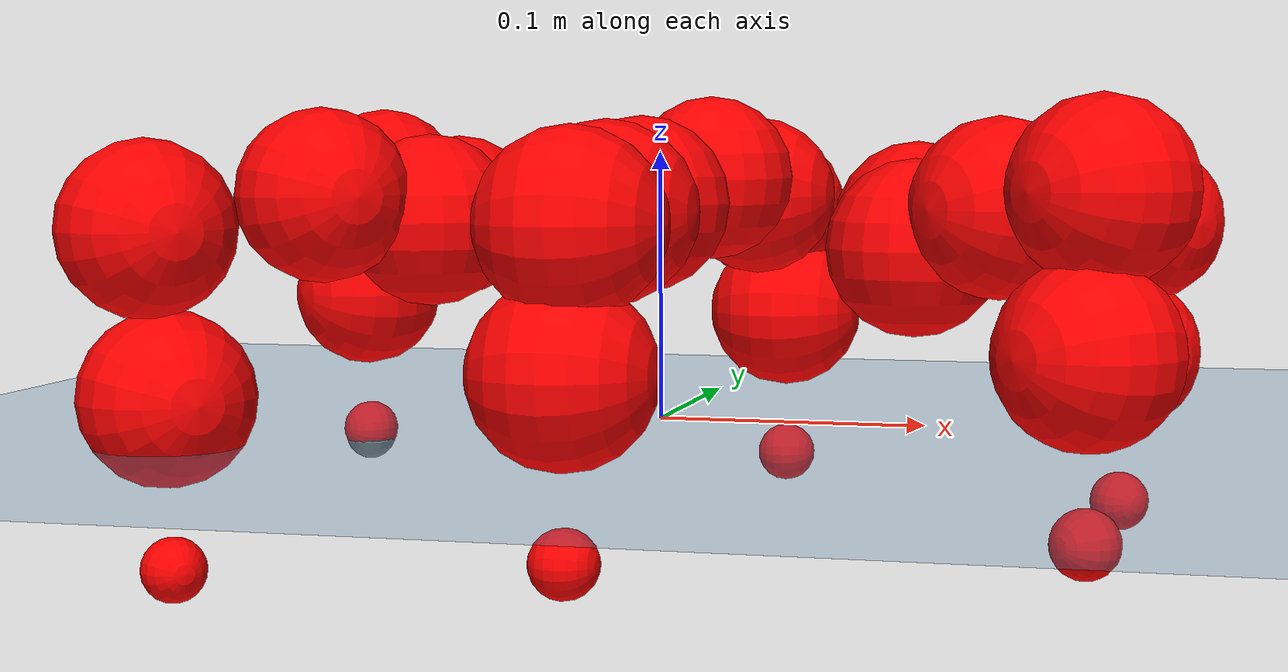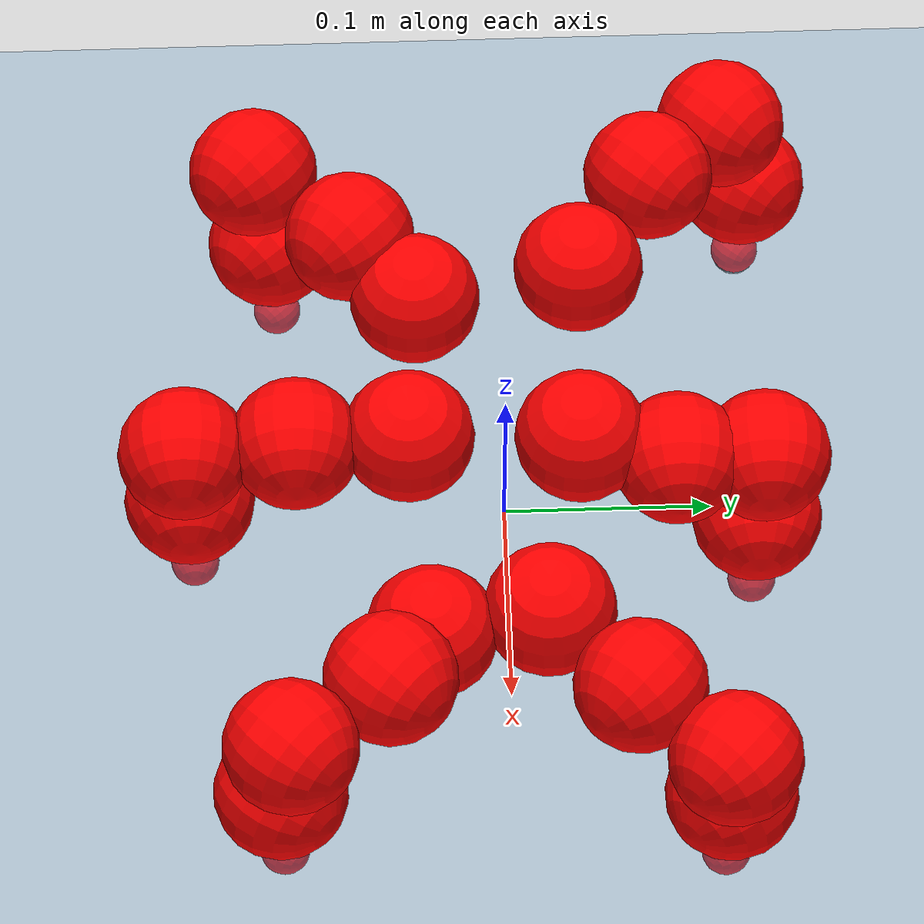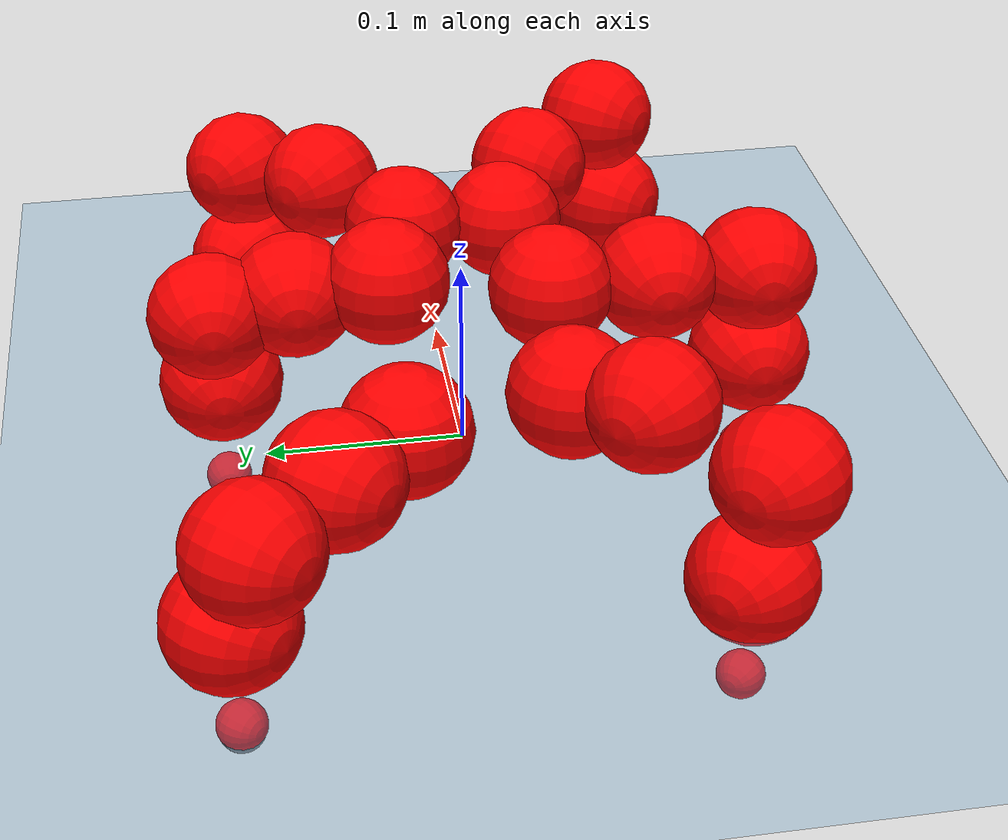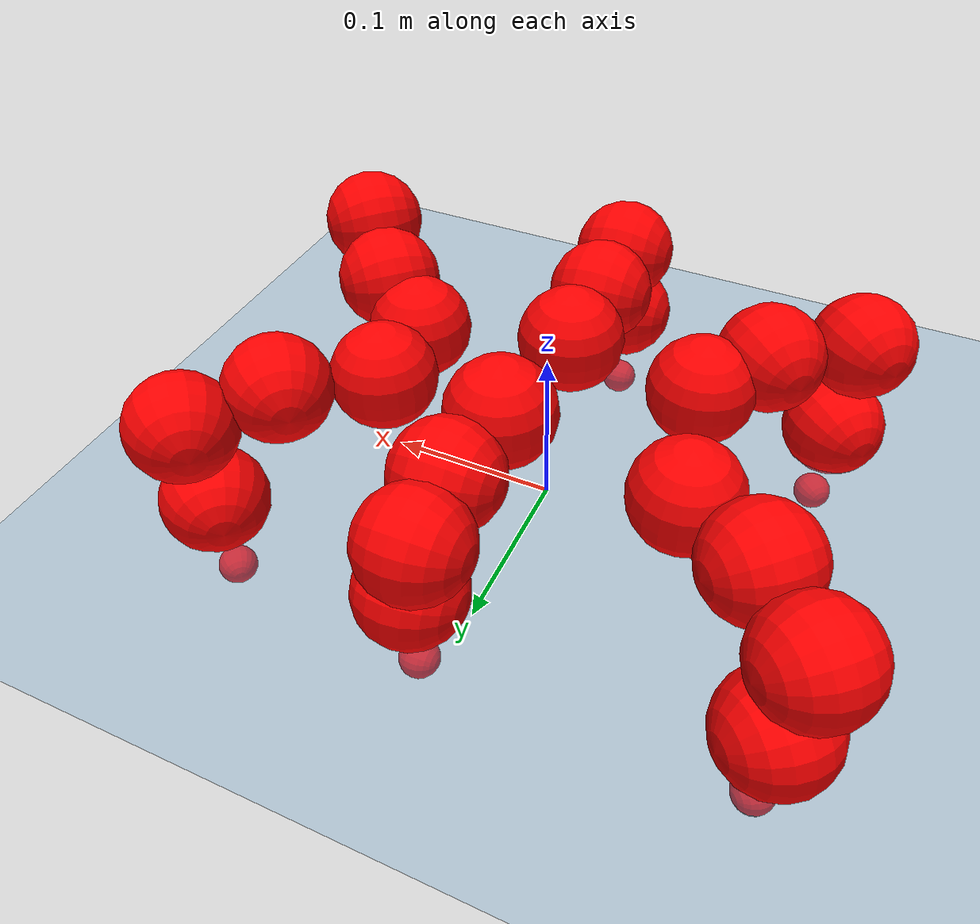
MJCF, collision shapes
<mujoco model="Golem">
  <compiler angle="radian" assetdir="assets" balanceinertia="true" inertiafromgeom="false"/>

  <option timestep="0.005" density="1.2" viscosity="2e-05"/>

  <size nkey="1"/>

  <visual>
    <quality shadowsize="8192"/>
    <map shadowclip="0.5"/>
  </visual>

  <default>
    <default class="/">
      <joint armature="0.01" damping="0.01" frictionloss="0.01"/>
      <geom contype="0" conaffinity="0" group="1" solref="-1000 -80"/>
      <site size="0.01 0.005 0.005" group="5"/>
      <general forcelimited="true" biastype="affine" gainprm="25" biasprm="0 -25 -0.5"/>
      <default class="visual">
        <geom type="mesh" group="2"/>
      </default>
      <default class="collision">
        <geom group="3"/>
      </default>
      <default class="foot">
        <geom size="0.01 0 0" condim="6" group="4" priority="1" solimp="0.015 1 0.01"/>
      </default>
      <default class="reward_collision_sphere">
        <geom group="5" rgba="1 0 0 1"/>
      </default>
    </default>
  </default>

  <asset>
    <texture type="skybox" colorspace="auto" name="//unnamed_texture_0" builtin="gradient" rgb1="0.95 0.95 0.95" rgb2="0.95 0.95 0.95" width="100" height="600"/>
    <texture type="2d" colorspace="auto" name="texplane" builtin="checker" rgb1="0.345 0.575 0.748" rgb2="0.345 0.575 0.748" markrgb="1 1 1" width="512" height="512"/>
    <material name="MatPlane" class="/" texture="texplane" texuniform="true" texrepeat="2 2" specular="0.9"/>
    <mesh name="body" class="/" file="body.stl" scale="0.001 0.001 0.001"/>
    <mesh name="coxa" class="/" file="coxa.stl" scale="0.001 0.001 0.001"/>
    <mesh name="femur" class="/" file="femur.stl" scale="0.001 0.001 0.001"/>
    <mesh name="tibia" class="/" file="tibia.stl" scale="0.001 0.001 0.001"/>
    <mesh name="tarsus" class="/" file="tarsus.stl" scale="0.001 0.001 0.001"/>
  </asset>

  <worldbody>
    <geom name="floor" class="/" size="100 100 0.125" type="plane" group="0" material="MatPlane"/>
    <light name="toplight_shadow" class="/" pos="0 0 5" dir="0.0990148 0.0990148 -0.990148" type="directional" ambient="0.04 0.04 0.04" diffuse="0.55 0.55 0.55" specular="0.12 0.12 0.12"/>
    <light name="toplight_fill" class="/" pos="0 0 5" dir="0.0990148 0.0990148 -0.990148" type="directional" castshadow="false" ambient="0.04 0.04 0.04" diffuse="0.3 0.3 0.3" specular="0.08 0.08 0.08"/>
    <body name="trunk" pos="0.00137954 -0.00135073 -0.00297145" quat="0.999976 0.00128089 0.00179834 0.0065339">
      <inertial pos="-0.00375325 -0.00144888 -0.00533065" quat="0.999998 0.0011833 -0.00145976 -0.000809563" mass="1.45965" diaginertia="0.000526694 0.000352368 0.0327753"/>
      <joint name="//unnamed_joint_0" type="free"/>
      <geom name="//unnamed_geom_1" class="/" pos="0 0 0.0821136" quat="1 0 0 0" type="mesh" rgba="0.9 0.9 0.9 1" mesh="body"/>
      <site name="imu" class="/" pos="0.00835638 0.037581 0.135356" size="0.00782341"/>
      <camera name="track" class="/" pos="0 -1.00664 0" quat="0.707107 0.707107 0 0" mode="trackcom"/>
      <camera name="ego_camera" class="/" pos="0.0728885 0 0.128302" quat="-0.5 -0.5 0.5 0.5"/>
      <body name="coxa_RR" pos="-0.0901863 -0.0500213 0.0782142" quat="0.382397 0.00665991 -0.00138108 -0.923973">
        <inertial pos="0.00153101 -0.00199517 -0.0098355" quat="0.99912 -0.00527734 -0.0108905 0.0401499" mass="0.0860153" diaginertia="0.000474635 0.000285428 0.0299756"/>
        <joint name="coxa_joint_RR" class="/" pos="0 0 0" axis="0.00324649 0.0037495 -0.999988" range="-2.93724 3.38132" armature="0.00800806" damping="0.00212102" frictionloss="0.00482242"/>
        <geom name="//unnamed_geom_2" class="/" type="mesh" rgba="0.2 0.2 0.2 1" mesh="coxa"/>
        <geom name="//unnamed_geom_3" class="reward_collision_sphere" size="0.0312937" pos="-0.0168204 0 0"/>
        <body name="femur_RR" pos="0.0256749 -3.98584e-06 0.0102918" quat="0.500442 -0.499616 0.499465 0.500476">
          <inertial pos="0.00204291 -0.000910409 0.00268648" quat="1 6.40438e-05 -4.02328e-05 -1.67621e-05" mass="0.0980113" diaginertia="0.000519915 0.000300433 0.0371608"/>
          <joint name="femur_joint_RR" class="/" pos="0 0 0" axis="-0.0242115 0.0194149 -0.999518" range="-3.38007 3.1502" armature="0.0121133" damping="0.0381081" frictionloss="0.00937865"/>
          <geom name="//unnamed_geom_4" class="/" type="mesh" rgba="0.9 0.9 0.9 1" mesh="femur"/>
          <geom name="//unnamed_geom_5" class="reward_collision_sphere" size="0.0312937"/>
          <body name="tibia_RR" pos="0.00963633 -0.0651901 -0.000497055" quat="0.000158171 0.999989 0.0038208 -0.00265339">
            <inertial pos="-0.0105489 -0.00726356 -0.00205871" quat="1 0.000366942 0.000303807 -0.000471161" mass="0.0828407" diaginertia="0.000580318 0.000315635 0.0393008"/>
            <joint name="tibia_joint_RR" class="/" pos="0 0 0" axis="-0.00832772 0.0615108 0.998072" range="-3.38884 3.14744" armature="0.0114447" damping="0.046829" frictionloss="0.00844367"/>
            <geom name="//unnamed_geom_6" class="/" type="mesh" rgba="0.2 0.2 0.2 1" mesh="tibia"/>
            <geom name="//unnamed_geom_7" class="reward_collision_sphere" size="0.0312937"/>
            <body name="tarsus_RR" pos="0.0593148 -0.00599501 0.00231574" quat="0.999997 -0.00126811 0.00199023 -0.000589278">
              <inertial pos="0.0349919 0.00224286 -0.000887633" quat="0.503984 0.498721 0.499176 0.498097" mass="0.0873478" diaginertia="0.000463969 0.000321557 0.028542"/>
              <joint name="tarsus_joint_RR" class="/" pos="0 0 0" axis="0.0248958 -0.0473171 0.99857" range="-3.01535 3.16866" armature="0.00870896" damping="0" frictionloss="0.00702912"/>
              <geom name="//unnamed_geom_8" class="/" type="mesh" rgba="0.9 0.9 0.9 1" mesh="tarsus"/>
              <geom name="foot_1" class="foot" size="0.00654985" pos="0.0627962 0 0" quat="0 -0.707107 0 0.707107"/>
              <geom name="//unnamed_geom_10" class="reward_collision_sphere" size="0.0312937"/>
              <geom name="//unnamed_geom_11" class="reward_collision_sphere" size="0.0117351" pos="0.0602732 0 0"/>
              <site name="foot_1" class="foot" pos="0.0627962 0 0" quat="0 -0.707107 0 0.707107" size="0.00782341"/>
            </body>
          </body>
        </body>
      </body>
      <body name="coxa_RM" pos="0.00260761 -0.0608783 0.0857355" quat="0.708685 -0.000633666 -0.0055931 -0.705503">
        <inertial pos="-0.00613889 0.0113202 -0.00430268" quat="1 0.00059766 -0.000165631 -0.000233222" mass="0.114159" diaginertia="0.00066997 0.000335137 0.0358572"/>
        <joint name="coxa_joint_RM" class="/" pos="0 0 0" axis="-0.042414 -0.0363324 -0.998439" stiffness="0.0090448" range="-3.16455 2.92766" armature="0.00310322" damping="0.0290283" frictionloss="0.0113885"/>
        <geom name="//unnamed_geom_12" class="/" type="mesh" rgba="0.2 0.2 0.2 1" mesh="coxa"/>
        <geom name="//unnamed_geom_13" class="reward_collision_sphere" size="0.0312937" pos="-0.0168204 0 0"/>
        <body name="femur_RM" pos="0.0363916 0.00093413 -0.00116828" quat="0.500339 -0.499704 0.500246 0.49971">
          <inertial pos="-0.00820846 -0.00342454 -0.000901966" quat="0.999892 -0.00490261 -0.0137985 -0.000903699" mass="0.0782232" diaginertia="0.000566681 0.000304447 0.0328132"/>
          <joint name="femur_joint_RM" class="/" pos="0 0 0" axis="-0.00676682 0.0212641 -0.999751" stiffness="0.000892129" range="-3.00884 3.12223" armature="0.00833466" damping="0" frictionloss="0.00443636"/>
          <geom name="//unnamed_geom_14" class="/" type="mesh" rgba="0.9 0.9 0.9 1" mesh="femur"/>
          <geom name="//unnamed_geom_15" class="reward_collision_sphere" size="0.0312937"/>
          <body name="tibia_RM" pos="0.00166199 -0.0522332 0.00201549" quat="-2.82619e-05 1 -0.000477285 0.00021322">
            <inertial pos="-0.00510992 0.000887551 0.0115114" quat="0.998501 0.0315247 0.0335847 0.0295761" mass="0.0965141" diaginertia="0.000477237 0.000328002 0.0304845"/>
            <joint name="tibia_joint_RM" class="/" pos="0 0 0" axis="-0.00611468 0.00594394 0.999964" range="-3.18209 3.25046" armature="0.00371303" damping="0" frictionloss="0.00260936"/>
            <geom name="//unnamed_geom_16" class="/" type="mesh" rgba="0.2 0.2 0.2 1" mesh="tibia"/>
            <geom name="//unnamed_geom_17" class="reward_collision_sphere" size="0.0312937"/>
            <body name="tarsus_RM" pos="0.0477153 -0.000672868 0.00300428" quat="1 0.000194382 -0.000213508 4.42312e-05">
              <inertial pos="0.0248191 0.00248628 0.0014149" quat="0.528688 0.49198 0.508277 0.469146" mass="0.0935362" diaginertia="0.000512747 0.000302165 0.0386352"/>
              <joint name="tarsus_joint_RM" class="/" pos="0 0 0" axis="0.000504265 -0.000780491 1" range="-3.3898 3.00794" armature="0.00261621" damping="0.000346645" frictionloss="0.00798252"/>
              <geom name="//unnamed_geom_18" class="/" type="mesh" rgba="0.9 0.9 0.9 1" mesh="tarsus"/>
              <geom name="foot_2" class="foot" size="0.00426245" pos="0.0627962 0 0" quat="0 -0.707107 0 0.707107"/>
              <geom name="//unnamed_geom_20" class="reward_collision_sphere" size="0.0312937"/>
              <geom name="//unnamed_geom_21" class="reward_collision_sphere" size="0.0117351" pos="0.0602732 0 0"/>
              <site name="foot_2" class="foot" pos="0.0627962 0 0" quat="0 -0.707107 0 0.707107" size="0.00782341"/>
            </body>
          </body>
        </body>
      </body>
      <body name="coxa_RF" pos="0.110997 -0.0490678 0.0710425" quat="0.923908 1.02545e-05 5.06972e-05 -0.382615">
        <inertial pos="0.00949585 0.0140231 -0.00829594" quat="0.998959 0.0063388 -0.000917961 0.0451703" mass="0.102145" diaginertia="0.000500541 0.000319225 0.0353372"/>
        <joint name="coxa_joint_RF" class="/" pos="0 0 0" axis="0.00627295 0.00554607 -0.999965" stiffness="0.00158229" range="-3.02627 2.89554" armature="0.0108465" damping="0" frictionloss="0.00822996"/>
        <geom name="//unnamed_geom_22" class="/" type="mesh" rgba="0.2 0.2 0.2 1" mesh="coxa"/>
        <geom name="//unnamed_geom_23" class="reward_collision_sphere" size="0.0312937" pos="-0.0168204 0 0"/>
        <body name="femur_RF" pos="0.0195384 0.00813163 0.0151576" quat="0.504815 -0.499893 0.497589 0.497669">
          <inertial pos="-0.00197523 0.00928022 -0.0119599" quat="0.99803 -0.0197776 0.0252086 -0.0539332" mass="0.0977197" diaginertia="0.000599435 0.000367709 0.0352457"/>
          <joint name="femur_joint_RF" class="/" pos="0 0 0" axis="0.0226962 -0.00180713 -0.999741" range="-3.31582 3.13152" armature="0.00647403" damping="0.0391566" frictionloss="0.0124815"/>
          <geom name="//unnamed_geom_24" class="/" type="mesh" rgba="0.9 0.9 0.9 1" mesh="femur"/>
          <geom name="//unnamed_geom_25" class="reward_collision_sphere" size="0.0312937"/>
          <body name="tibia_RF" pos="-0.00753599 -0.0587176 -0.00625037" quat="0.0045734 0.999989 -5.69446e-05 -0.000777613">
            <inertial pos="-0.00157212 -0.00708417 0.0048994" quat="0.999064 -0.0211592 0.0298947 0.0230014" mass="0.0934368" diaginertia="0.000539168 0.000334358 0.0374693"/>
            <joint name="tibia_joint_RF" class="/" pos="0 0 0" axis="-0.0527249 0.0203778 0.998401" range="-3.08781 3.11058" armature="0.00986578" damping="0.00914779" frictionloss="0.00787729"/>
            <geom name="//unnamed_geom_26" class="/" type="mesh" rgba="0.2 0.2 0.2 1" mesh="tibia"/>
            <geom name="//unnamed_geom_27" class="reward_collision_sphere" size="0.0312937"/>
            <body name="tarsus_RF" pos="0.0520125 0.00164255 0.00692182" quat="0.999983 -0.00483035 -0.00258489 -0.00221551">
              <inertial pos="0.0454076 -9.00261e-05 -0.0136853" quat="0.507636 0.482677 0.473311 0.53414" mass="0.120569" diaginertia="0.000543564 0.000379458 0.0402473"/>
              <joint name="tarsus_joint_RF" class="/" pos="0 0 0" axis="0.0328733 0.0531868 0.998043" stiffness="0.000776816" range="-3.39154 3.07644" armature="0.00782423" damping="0" frictionloss="0.00445148"/>
              <geom name="//unnamed_geom_28" class="/" type="mesh" rgba="0.9 0.9 0.9 1" mesh="tarsus"/>
              <geom name="foot_3" class="foot" size="0.00669454" pos="0.0627962 0 0" quat="0 -0.707107 0 0.707107"/>
              <geom name="//unnamed_geom_30" class="reward_collision_sphere" size="0.0312937"/>
              <geom name="//unnamed_geom_31" class="reward_collision_sphere" size="0.0117351" pos="0.0602732 0 0"/>
              <site name="foot_3" class="foot" pos="0.0627962 0 0" quat="0 -0.707107 0 0.707107" size="0.00782341"/>
            </body>
          </body>
        </body>
      </body>
      <body name="coxa_LR" pos="-0.105358 0.0531863 0.0765097" quat="0.385761 -0.00413485 -0.00302331 0.922584">
        <inertial pos="-0.0114908 0.00167811 0.00795639" quat="0.998792 -0.0321953 0.0161179 0.0334438" mass="0.0931298" diaginertia="0.00052565 0.000315796 0.0339852"/>
        <joint name="coxa_joint_LR" class="/" pos="0 0 0" axis="-0.0485322 0.0384698 -0.998081" stiffness="0.00788805" range="-3.09065 3.13071" armature="0.0100522" damping="0.044244" frictionloss="0.00735847"/>
        <geom name="//unnamed_geom_32" class="/" type="mesh" rgba="0.2 0.2 0.2 1" mesh="coxa"/>
        <geom name="//unnamed_geom_33" class="reward_collision_sphere" size="0.0312937" pos="-0.0168204 0 0"/>
        <body name="femur_LR" pos="0.0401173 0.00633535 0.0104737" quat="0.497634 -0.496762 0.501798 0.503772">
          <inertial pos="-0.00470104 0.00107171 0.00172338" quat="0.999983 -0.00402096 0.00313402 -0.00290606" mass="0.098011" diaginertia="0.000558632 0.000319491 0.0322063"/>
          <joint name="femur_joint_LR" class="/" pos="0 0 0" axis="0.00193772 0.000864363 0.999998" range="-3.26652 2.86078" armature="0.0073652" damping="0" frictionloss="0.00258553"/>
          <geom name="//unnamed_geom_34" class="/" type="mesh" rgba="0.9 0.9 0.9 1" mesh="femur"/>
          <geom name="//unnamed_geom_35" class="reward_collision_sphere" size="0.0312937"/>
          <body name="tibia_LR" pos="0.00562027 -0.0501298 -0.00299982" quat="0.000183654 1 -0.000163565 -0.000428963">
            <inertial pos="-0.00345265 0.00225409 -0.00175485" quat="0.99986 0.00366216 -0.00969788 0.0131544" mass="0.106712" diaginertia="0.000567256 0.000293821 0.0354664"/>
            <joint name="tibia_joint_LR" class="/" pos="0 0 0" axis="0.00409762 -0.0167612 -0.999851" stiffness="0.013388" range="-3.21271 3.3659" armature="0.0130942" damping="0" frictionloss="0.0104889"/>
            <geom name="//unnamed_geom_36" class="/" type="mesh" rgba="0.2 0.2 0.2 1" mesh="tibia"/>
            <geom name="//unnamed_geom_37" class="reward_collision_sphere" size="0.0312937"/>
            <body name="tarsus_LR" pos="0.0427441 0.00433592 0.0123656" quat="0.999999 -0.00108866 0.0010328 -0.000805065">
              <inertial pos="0.0345078 0.00517263 0.000289148" quat="0.498321 0.502865 0.499693 0.499109" mass="0.0944663" diaginertia="0.000534313 0.000332864 0.0341077"/>
              <joint name="tarsus_joint_LR" class="/" pos="0 0 0" axis="-0.0151299 0.00423403 -0.999877" stiffness="0.0309641" range="-3.38155 3.11055" armature="0.0073099" damping="0.0741858" frictionloss="0.00729054"/>
              <geom name="//unnamed_geom_38" class="/" type="mesh" rgba="0.9 0.9 0.9 1" mesh="tarsus"/>
              <geom name="foot_4" class="foot" size="0.0109192" pos="0.0627962 0 0" quat="0.707107 0 -0.707107 0"/>
              <geom name="//unnamed_geom_40" class="reward_collision_sphere" size="0.0312937"/>
              <geom name="//unnamed_geom_41" class="reward_collision_sphere" size="0.0117351" pos="0.0602732 0 0"/>
              <site name="foot_4" class="foot" pos="0.0627962 0 0" quat="0.707107 0 -0.707107 0" size="0.00782341"/>
            </body>
          </body>
        </body>
      </body>
      <body name="coxa_LM" pos="0.0103689 0.0532457 0.0924429" quat="0.709293 -0.00165457 -0.00599769 0.704886">
        <inertial pos="0.00546478 0.000309005 -0.00771374" quat="0.999994 0.00327392 0.000470893 0.00113916" mass="0.0834458" diaginertia="0.000381343 0.000266887 0.0265712"/>
        <joint name="coxa_joint_LM" class="/" pos="0 0 0" axis="-0.00234497 0.00123265 -0.999996" range="-2.93079 3.18459" armature="0.0116552" damping="0" frictionloss="0.00391305"/>
        <geom name="//unnamed_geom_42" class="/" type="mesh" rgba="0.2 0.2 0.2 1" mesh="coxa"/>
        <geom name="//unnamed_geom_43" class="reward_collision_sphere" size="0.0312937" pos="-0.0168204 0 0"/>
        <body name="femur_LM" pos="0.0284366 -0.00857962 -0.00868582" quat="0.499835 -0.500217 0.499978 0.49997">
          <inertial pos="-0.000781314 0.00902425 -0.0014852" quat="0.999273 0.000902075 -0.0269647 0.0269522" mass="0.124145" diaginertia="0.000674687 0.000379573 0.040738"/>
          <joint name="femur_joint_LM" class="/" pos="0 0 0" axis="-0.0281487 -0.00837976 0.999569" range="-3.19845 3.14596" armature="0.0106802" damping="0" frictionloss="0.00464953"/>
          <geom name="//unnamed_geom_44" class="/" type="mesh" rgba="0.9 0.9 0.9 1" mesh="femur"/>
          <geom name="//unnamed_geom_45" class="reward_collision_sphere" size="0.0312937"/>
          <body name="tibia_LM" pos="0.00648596 -0.0412559 0.00339444" quat="0.000601709 1 0.000247844 -0.000223608">
            <inertial pos="0.0126875 -0.0140242 -0.000705547" quat="0.999999 0.00102968 0.000950617 -0.000284155" mass="0.0814453" diaginertia="0.000608661 0.000317709 0.0336118"/>
            <joint name="tibia_joint_LM" class="/" pos="0 0 0" axis="0.00152909 -0.00423519 -0.99999" range="-3.32585 3.13015" armature="0.00728557" damping="0" frictionloss="0.0106538"/>
            <geom name="//unnamed_geom_46" class="/" type="mesh" rgba="0.2 0.2 0.2 1" mesh="tibia"/>
            <geom name="//unnamed_geom_47" class="reward_collision_sphere" size="0.0312937"/>
            <body name="tarsus_LM" pos="0.0434403 -0.00279577 0.00719675" quat="1 0.000157671 -0.000141998 7.12995e-05">
              <inertial pos="0.0386495 0.00234381 -0.000941477" quat="0.500113 0.497051 0.501781 0.501042" mass="0.103221" diaginertia="0.000539536 0.000314467 0.0296399"/>
              <joint name="tarsus_joint_LM" class="/" pos="0 0 0" axis="-0.0457346 -0.0233812 -0.99868" stiffness="0.0102005" range="-3.21265 3.32208" armature="0.00788294" damping="0" frictionloss="0.0118571"/>
              <geom name="//unnamed_geom_48" class="/" type="mesh" rgba="0.9 0.9 0.9 1" mesh="tarsus"/>
              <geom name="foot_5" class="foot" size="0.00747356" pos="0.0627962 0 0" quat="0.707107 0 -0.707107 0"/>
              <geom name="//unnamed_geom_50" class="reward_collision_sphere" size="0.0312937"/>
              <geom name="//unnamed_geom_51" class="reward_collision_sphere" size="0.0117351" pos="0.0602732 0 0"/>
              <site name="foot_5" class="foot" pos="0.0627962 0 0" quat="0.707107 0 -0.707107 0" size="0.00782341"/>
            </body>
          </body>
        </body>
      </body>
      <body name="coxa_LF" pos="0.104721 0.0296146 0.0761356" quat="0.922971 0.00155417 -0.0014882 0.384863">
        <inertial pos="0.000866915 0.00912343 0.00165754" quat="0.999887 0.00807591 -0.0124072 0.00260556" mass="0.108782" diaginertia="0.000614592 0.000411804 0.0383384"/>
        <joint name="coxa_joint_LF" class="/" pos="0 0 0" axis="-0.0158898 0.0189683 -0.999694" stiffness="0.0164738" range="-2.96554 3.2319" armature="0.00814315" damping="0.032424" frictionloss="0.00519615"/>
        <geom name="//unnamed_geom_52" class="/" type="mesh" rgba="0.2 0.2 0.2 1" mesh="coxa"/>
        <geom name="//unnamed_geom_53" class="reward_collision_sphere" size="0.0312937" pos="-0.0168204 0 0"/>
        <body name="femur_LF" pos="0.042184 -0.00414656 0.00579541" quat="0.496787 -0.502023 0.499994 0.501179">
          <inertial pos="-0.00245924 -0.00152864 0.000827841" quat="0.997702 0.0598353 -0.0279233 -0.01522" mass="0.0935908" diaginertia="0.000570991 0.000364761 0.0374797"/>
          <joint name="femur_joint_LF" class="/" pos="0 0 0" axis="-0.026998 -0.0233661 0.999362" range="-3.12944 3.25951" armature="0.00789622" damping="0" frictionloss="0.0132937"/>
          <geom name="//unnamed_geom_54" class="/" type="mesh" rgba="0.9 0.9 0.9 1" mesh="femur"/>
          <geom name="//unnamed_geom_55" class="reward_collision_sphere" size="0.0312937"/>
          <body name="tibia_LF" pos="0.00728585 -0.0541831 0.00351219" quat="-1.13955e-05 1 0.000399848 -0.000122231">
            <inertial pos="-0.00271074 0.00137081 0.000667571" quat="0.999466 0.00233513 -0.00960478 -0.0311467" mass="0.0858485" diaginertia="0.000580703 0.000349489 0.0377376"/>
            <joint name="tibia_joint_LF" class="/" pos="0 0 0" axis="0.0325802 -0.0113299 -0.999405" range="-2.87496 3.14599" armature="0.00483934" damping="0" frictionloss="0.01115"/>
            <geom name="//unnamed_geom_56" class="/" type="mesh" rgba="0.2 0.2 0.2 1" mesh="tibia"/>
            <geom name="//unnamed_geom_57" class="reward_collision_sphere" size="0.0312937"/>
            <body name="tarsus_LF" pos="0.0523753 -0.0049422 -0.0066152" quat="1 -0.000160443 0.00010196 0.000371774">
              <inertial pos="0.0392815 0.00111068 -0.0129744" quat="0.503182 0.494106 0.501306 0.501358" mass="0.104553" diaginertia="0.00055967 0.000341491 0.0366778"/>
              <joint name="tarsus_joint_LF" class="/" pos="0 0 0" axis="-0.00647471 0.0471607 -0.998866" range="-3.15536 2.9878" armature="0.00816997" damping="0.071002" frictionloss="0.0073918"/>
              <geom name="//unnamed_geom_58" class="/" type="mesh" rgba="0.9 0.9 0.9 1" mesh="tarsus"/>
              <geom name="foot_6" class="foot" size="0.00755158" pos="0.0627962 0 0" quat="0.707107 0 -0.707107 0"/>
              <geom name="//unnamed_geom_60" class="reward_collision_sphere" size="0.0312937"/>
              <geom name="//unnamed_geom_61" class="reward_collision_sphere" size="0.0117351" pos="0.0602732 0 0"/>
              <site name="foot_6" class="foot" pos="0.0627962 0 0" quat="0.707107 0 -0.707107 0" size="0.00782341"/>
            </body>
          </body>
        </body>
      </body>
    </body>
  </worldbody>

  <contact>
    <pair class="/" geom1="floor" geom2="foot_1" name="//unnamed_contact_0"/>
    <pair class="/" geom1="floor" geom2="foot_2" name="//unnamed_contact_1"/>
    <pair class="/" geom1="floor" geom2="foot_3" name="//unnamed_contact_2"/>
    <pair class="/" geom1="floor" geom2="foot_4" name="//unnamed_contact_3"/>
    <pair class="/" geom1="floor" geom2="foot_5" name="//unnamed_contact_4"/>
    <pair class="/" geom1="floor" geom2="foot_6" name="//unnamed_contact_5"/>
  </contact>

  <actuator>
    <general name="coxa_joint_RR" class="/" joint="coxa_joint_RR" forcerange="-3.75185 3.75185" gainprm="26.0199" biasprm="0 -26.0199 -0.515321"/>
    <general name="femur_joint_RR" class="/" joint="femur_joint_RR" forcerange="-4.51195 4.51195" gainprm="26.0199" biasprm="0 -26.0199 -0.515321"/>
    <general name="tibia_joint_RR" class="/" joint="tibia_joint_RR" forcerange="-6.35078 6.35078" gainprm="26.0199" biasprm="0 -26.0199 -0.515321"/>
    <general name="tarsus_joint_RR" class="/" joint="tarsus_joint_RR" forcerange="-5.2541 5.2541" gainprm="26.0199" biasprm="0 -26.0199 -0.515321"/>
    <general name="coxa_joint_RM" class="/" joint="coxa_joint_RM" forcerange="-3.71533 3.71533" gainprm="26.0199" biasprm="0 -26.0199 -0.515321"/>
    <general name="femur_joint_RM" class="/" joint="femur_joint_RM" forcerange="-3.44209 3.44209" gainprm="26.0199" biasprm="0 -26.0199 -0.515321"/>
    <general name="tibia_joint_RM" class="/" joint="tibia_joint_RM" forcerange="-6.96236 6.96236" gainprm="26.0199" biasprm="0 -26.0199 -0.515321"/>
    <general name="tarsus_joint_RM" class="/" joint="tarsus_joint_RM" forcerange="-2.87052 2.87052" gainprm="26.0199" biasprm="0 -26.0199 -0.515321"/>
    <general name="coxa_joint_RF" class="/" joint="coxa_joint_RF" forcerange="-3.18245 3.18245" gainprm="26.0199" biasprm="0 -26.0199 -0.515321"/>
    <general name="femur_joint_RF" class="/" joint="femur_joint_RF" forcerange="-8.25562 8.25562" gainprm="26.0199" biasprm="0 -26.0199 -0.515321"/>
    <general name="tibia_joint_RF" class="/" joint="tibia_joint_RF" forcerange="-6.86835 6.86835" gainprm="26.0199" biasprm="0 -26.0199 -0.515321"/>
    <general name="tarsus_joint_RF" class="/" joint="tarsus_joint_RF" forcerange="-5.78223 5.78223" gainprm="26.0199" biasprm="0 -26.0199 -0.515321"/>
    <general name="coxa_joint_LR" class="/" joint="coxa_joint_LR" forcerange="-4.33912 4.33912" gainprm="26.0199" biasprm="0 -26.0199 -0.515321"/>
    <general name="femur_joint_LR" class="/" joint="femur_joint_LR" forcerange="-7.58845 7.58845" gainprm="26.0199" biasprm="0 -26.0199 -0.515321"/>
    <general name="tibia_joint_LR" class="/" joint="tibia_joint_LR" forcerange="-6.91456 6.91456" gainprm="26.0199" biasprm="0 -26.0199 -0.515321"/>
    <general name="tarsus_joint_LR" class="/" joint="tarsus_joint_LR" forcerange="-5.93184 5.93184" gainprm="26.0199" biasprm="0 -26.0199 -0.515321"/>
    <general name="coxa_joint_LM" class="/" joint="coxa_joint_LM" forcerange="-5.70121 5.70121" gainprm="26.0199" biasprm="0 -26.0199 -0.515321"/>
    <general name="femur_joint_LM" class="/" joint="femur_joint_LM" forcerange="-5.76145 5.76145" gainprm="26.0199" biasprm="0 -26.0199 -0.515321"/>
    <general name="tibia_joint_LM" class="/" joint="tibia_joint_LM" forcerange="-8.53211 8.53211" gainprm="26.0199" biasprm="0 -26.0199 -0.515321"/>
    <general name="tarsus_joint_LM" class="/" joint="tarsus_joint_LM" forcerange="-5.7805 5.7805" gainprm="26.0199" biasprm="0 -26.0199 -0.515321"/>
    <general name="coxa_joint_LF" class="/" joint="coxa_joint_LF" forcerange="-3.41851 3.41851" gainprm="26.0199" biasprm="0 -26.0199 -0.515321"/>
    <general name="femur_joint_LF" class="/" joint="femur_joint_LF" forcerange="-3.33979 3.33979" gainprm="26.0199" biasprm="0 -26.0199 -0.515321"/>
    <general name="tibia_joint_LF" class="/" joint="tibia_joint_LF" forcerange="-5.4437 5.4437" gainprm="26.0199" biasprm="0 -26.0199 -0.515321"/>
    <general name="tarsus_joint_LF" class="/" joint="tarsus_joint_LF" forcerange="-6.45354 6.45354" gainprm="26.0199" biasprm="0 -26.0199 -0.515321"/>
  </actuator>

  <sensor>
    <gyro site="imu" name="imu_angular_velocity"/>
    <velocimeter site="imu" name="imu_linear_velocity"/>
    <framelinvel objtype="site" objname="foot_1" name="foot_1_global_linear_velocity"/>
    <framelinvel objtype="site" objname="foot_2" name="foot_2_global_linear_velocity"/>
    <framelinvel objtype="site" objname="foot_3" name="foot_3_global_linear_velocity"/>
    <framelinvel objtype="site" objname="foot_4" name="foot_4_global_linear_velocity"/>
    <framelinvel objtype="site" objname="foot_5" name="foot_5_global_linear_velocity"/>
    <framelinvel objtype="site" objname="foot_6" name="foot_6_global_linear_velocity"/>
  </sensor>

  <keyframe>
    <key name="home" qpos="0 0 0.1457 1 0 0 0 0 0 0 0 0 0 0 0 0 0 0 0 0 0 0 0 0 0 0 0 0 0 0 0"/>
  </keyframe>
</mujoco>
